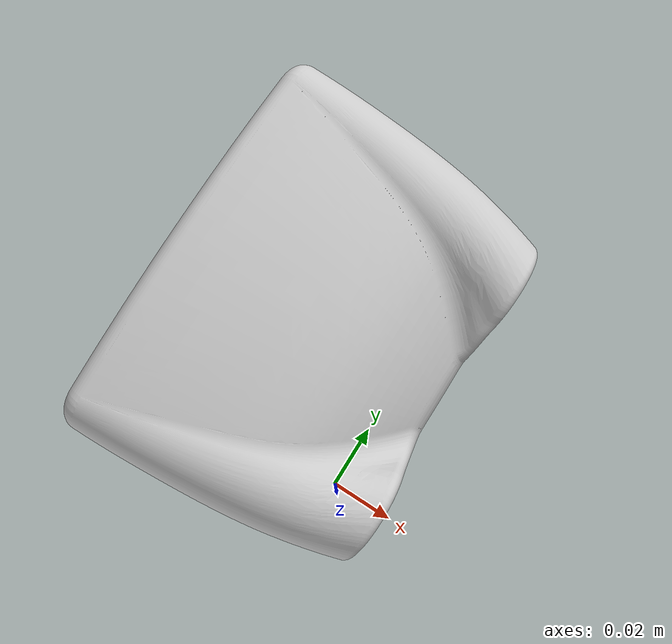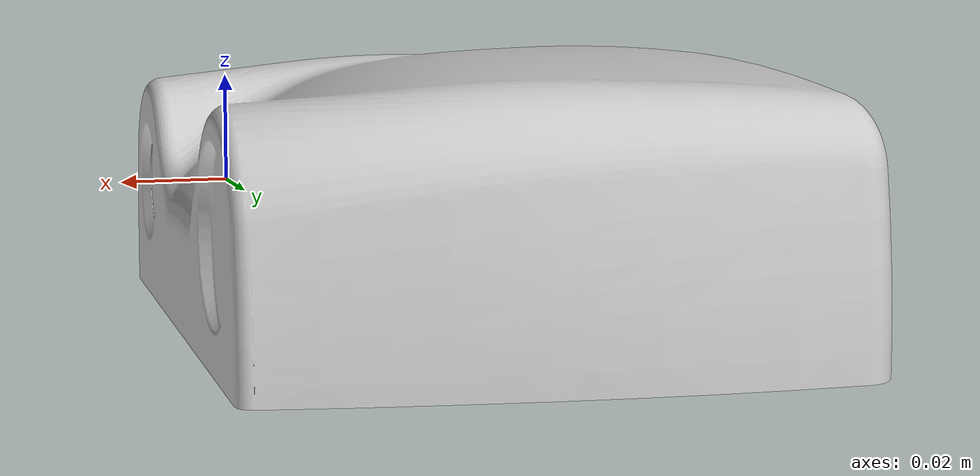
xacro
<?xml version="1.0"?>
<robot name="toroboeye_sl80" xmlns:xacro="http://ros.org/wiki/xacro">
  <xacro:arg name="prefix" default="toroboeye"/>
  <xacro:property name="M_PI" value="3.1415926535897931"/>
  <link name="$(arg prefix)/base_link"/>
  <joint name="$(arg prefix)/body_joint" type="fixed">
    <parent link="$(arg prefix)/base_link"/>
    <child  link="$(arg prefix)/camera_link"/>
    <origin xyz="0 0 0" rpy="0 0 0" />
  </joint>
  <link name="$(arg prefix)/camera_link">
    <visual>
      <geometry>
        <mesh filename="package://toroboeye_description/meshes/SL80.stl" scale="0.001 0.001 0.001"/>
      </geometry>
      <origin xyz="-0.037 0.04 -0.021056" rpy="0 0 ${90*M_PI/180}"/>
      <material name="gray">
        <color rgba="0.8 0.8 0.8 1.0"/>
      </material>
    </visual>
  </link>
  <joint name="$(arg prefix)/camera_frame_joint" type="fixed">
    <parent link="$(arg prefix)/camera_link"/>
    <child  link="$(arg prefix)/camera_frame"/>
    <origin xyz="0 0 0.056" rpy="0 0 0" />
  </joint>
  <link name="$(arg prefix)/camera_frame">
  </link>
  <joint name="$(arg prefix)/camera_optical_frame_joint" type="fixed">
    <parent link="$(arg prefix)/camera_frame"/>
    <child  link="$(arg prefix)/camera_optical_frame"/>
    <origin xyz="0 0 0" rpy="${-90*M_PI/180} 0 ${-90*M_PI/180}" />
  </joint>
  <link name="$(arg prefix)/camera_optical_frame">
  </link>
</robot>
